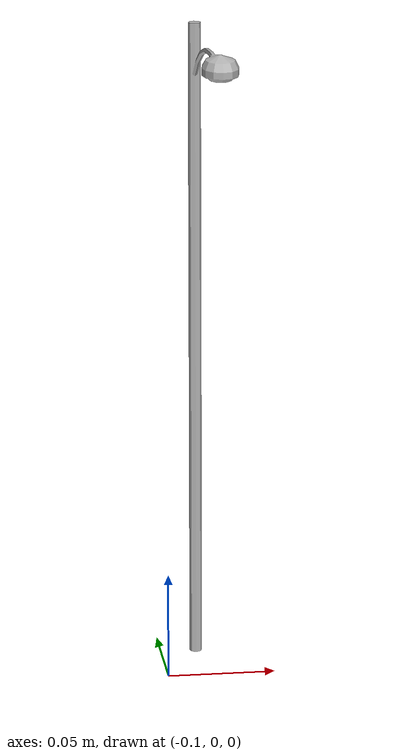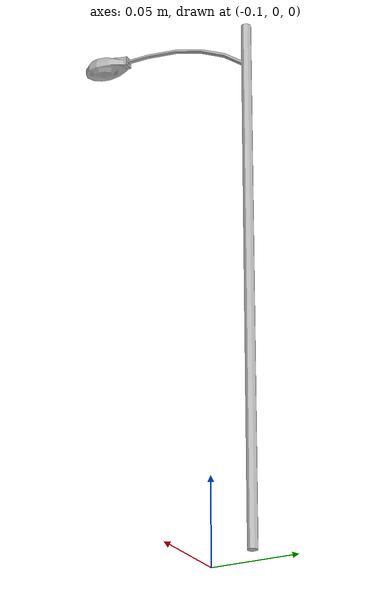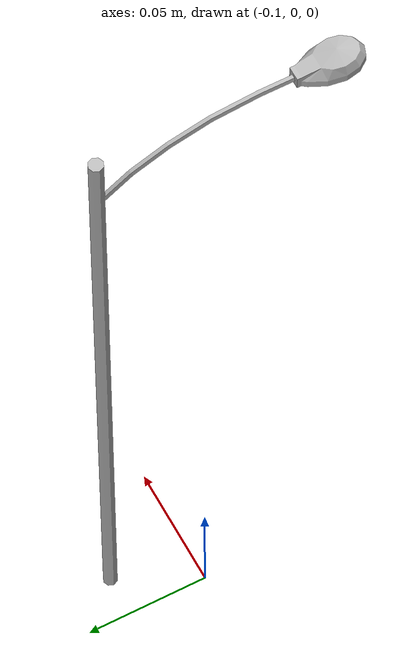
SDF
<?xml version="1.0"?>
<sdf version="1.3">
  <model name="lamp_post_autonomos">
    <static>true</static>
    <link name="link">
      <collision name="collision">
        <geometry>
          <mesh>
            <uri>model://lamp_post_autonomos/meshes/lamp_post_autonomos.dae</uri>
          </mesh>
        </geometry>
      </collision>
      <visual name="visual">
        <geometry>
          <mesh>
            <uri>model://lamp_post_autonomos/meshes/lamp_post_autonomos.dae</uri>
          </mesh>
        </geometry>
      </visual>
    </link>
  </model>
</sdf>
